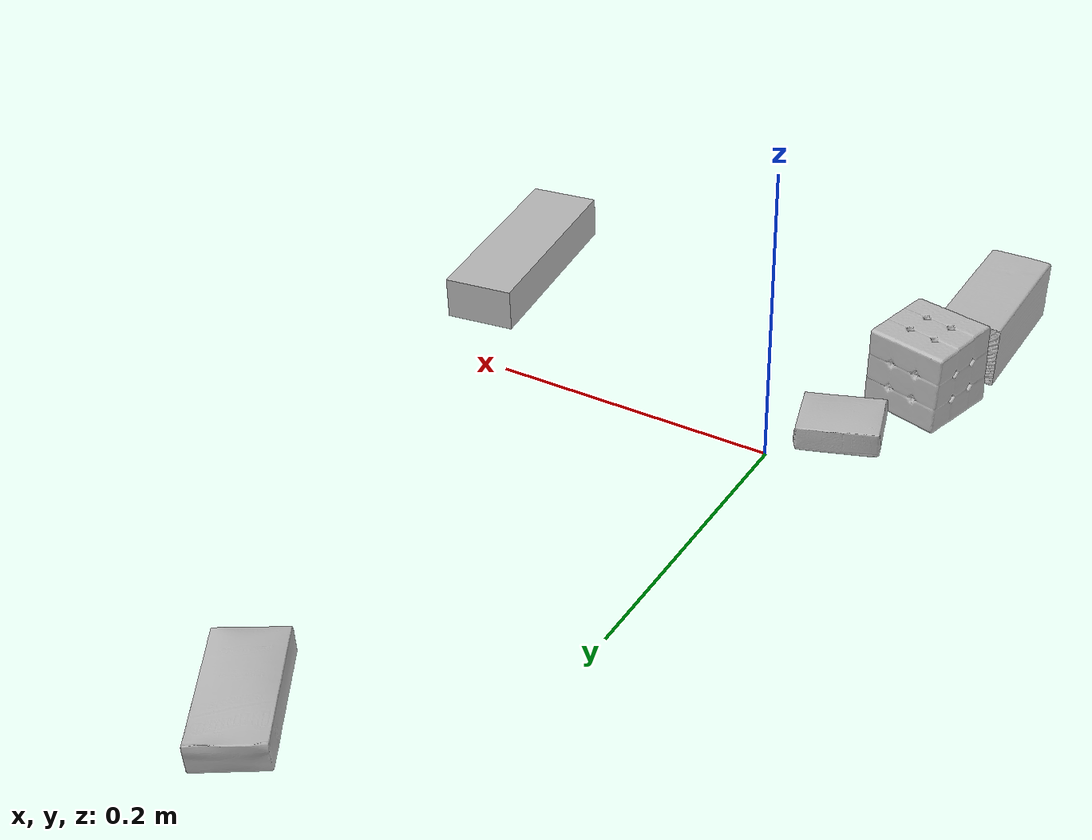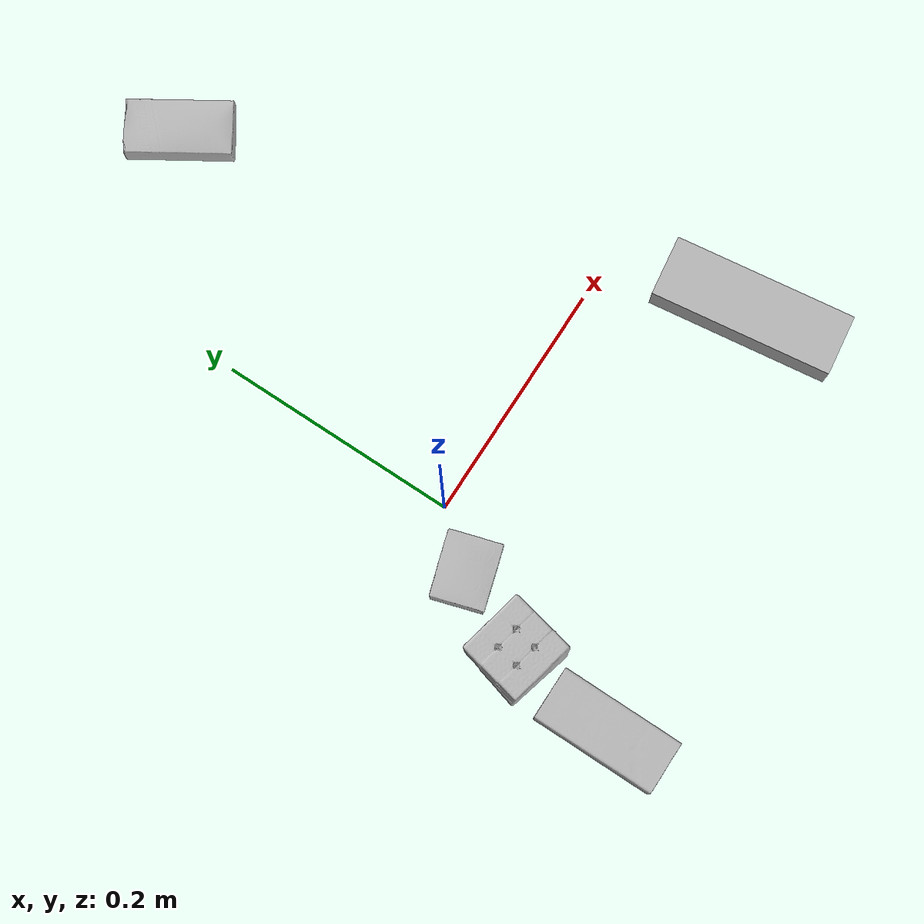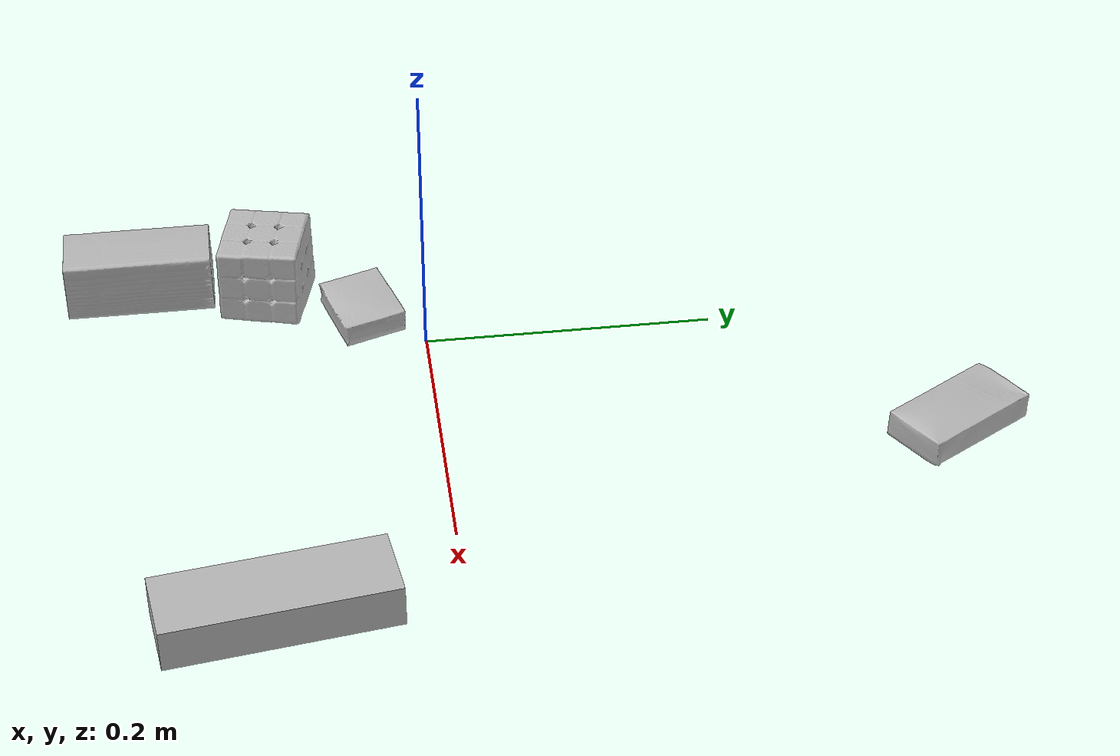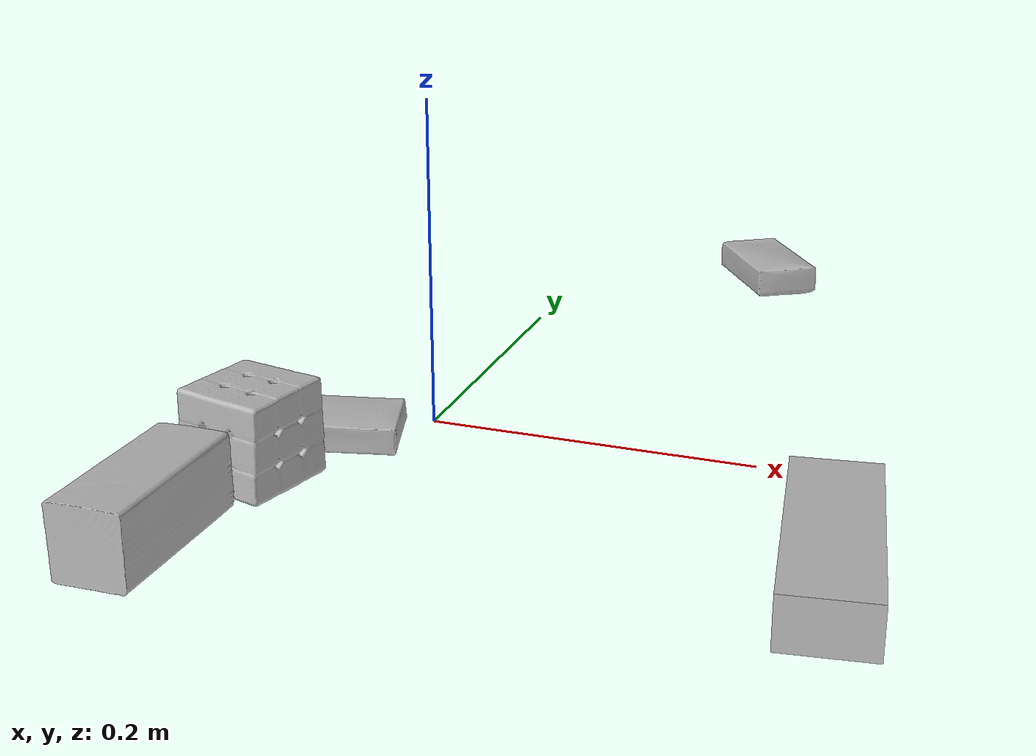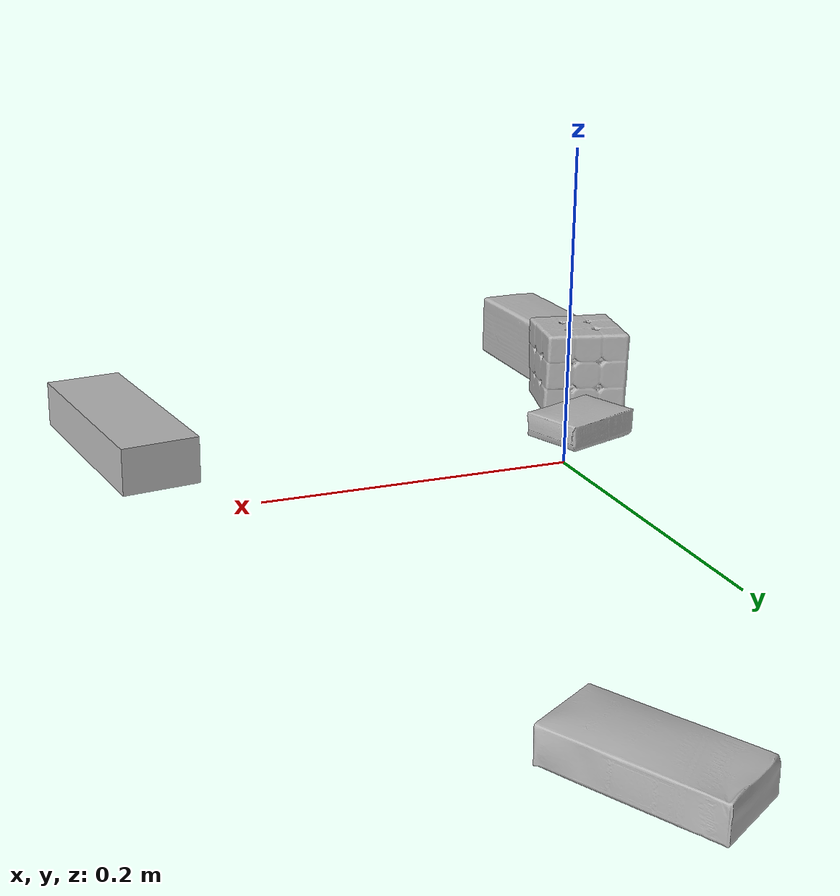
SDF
<sdf version="1.4">
  <world name="default">
    <light name="light1" type="point">
      <pose>0 0 1 0 0 0</pose>
      <diffuse>3 3 3 1</diffuse>
      <specular>3 3 3 1</specular>
    </light>
    <light name="light2" type="point">
      <pose>0 0.5 2 0 0 0</pose>
      <diffuse>1 1 1 1</diffuse>
      <specular>1 1 1 1</specular>
    </light>
    <light name="light3" type="point">
      <pose>0 0.5 2 0 0 0</pose>
      <diffuse>3 3 3 1</diffuse>
      <specular>3 3 3 1</specular>
    </light>
    <scene>
      <ambient>0.7 0.7 0.7</ambient>
    </scene>
    <model name="box1">
      <link name="link_box1">
        <collision name="default">
          <geometry>
            <mesh>
              <uri>model://wood_block/collision_meshes/collision.obj</uri>
              <scale>0.5 0.5 0.5</scale>
            </mesh>
          </geometry>
          <surface>
            <friction>
              <ode>
                <mu>0.5</mu>
                <mu2>0.5</mu2>
              </ode>
            </friction>
          <contact>
        <ode>
            <max_vel>0</max_vel>
            <min_depth>0.0001</min_depth>
            <kp>1e8</kp>
        </ode>
    </contact></surface>
        </collision>
        <visual name="default">
          <geometry>
            <mesh>
              <uri>model://wood_block/visual_meshes/visual.dae</uri>
              <scale>0.5 0.5 0.5</scale>
            </mesh>
          </geometry>
        </visual>
        <inertial>
          <mass>0.21249504387378693</mass>
          <pose>-2.906657528001233e-06 -0.00028540470520965755 0.00013204290007706732 -0.05220867383734612 -0.005192696375656893 -0.006861378651330705</pose>
          <inertia>
            <ixx>7.108762e-05</ixx>
            <iyy>0.00022456584</iyy>
            <izz>0.00022372584</izz>
            <ixy>0</ixy>
            <ixz>0</ixz>
            <iyz>0</iyz>
          </inertia>
        </inertial>
      </link>
      <pose>-0.07788141071796417 -0.19664283096790314 0.022629264742136 -0.0052086391378956464 0.005718769797695144 1.5739086884307123</pose>
    </model>
    <model name="box2">
      <link name="link_box2">
        <collision name="default">
          <geometry>
            <mesh>
              <uri>model://sugar_box/collision_meshes/collision.obj</uri>
              <scale>0.5 0.5 0.5</scale>
            </mesh>
          </geometry>
          <surface>
            <friction>
              <ode>
                <mu>0.5</mu>
                <mu2>0.5</mu2>
              </ode>
            </friction>
          <contact>
        <ode>
            <max_vel>0</max_vel>
            <min_depth>0.0001</min_depth>
            <kp>1e8</kp>
        </ode>
    </contact></surface>
        </collision>
        <visual name="default">
          <geometry>
            <mesh>
              <uri>model://sugar_box/visual_meshes/visual.dae</uri>
              <scale>0.5 0.5 0.5</scale>
            </mesh>
          </geometry>
        </visual>
        <inertial>
          <mass>0.11089310050010681</mass>
          <pose>0.0005171863595023751 1.924554817378521e-05 -0.00018182402709499002 -0.0004046262999979174 0.001050663638672674 0.002615379254561693</pose>
          <inertia>
            <ixx>2.3098954e-05</ixx>
            <iyy>7.4660566e-05</iyy>
            <izz>8.9377616e-05</izz>
            <ixy>0</ixy>
            <ixz>0</ixz>
            <iyz>0</iyz>
          </inertia>
        </inertial>
      </link>
      <pose>0.13765768706798553 0.34362807869911194 0.011399304494261742 0.0007756455021648469 -0.0234327462816818 -1.0237713638285413</pose>
    </model>
    <model name="box3">
      <link name="link_box3">
        <collision name="default">
          <geometry>
            <mesh>
              <uri>model://jenga/collision_meshes/collision.obj</uri>
              <scale>1.0 1.0 1.0</scale>
            </mesh>
          </geometry>
          <surface>
            <friction>
              <ode>
                <mu>0.5</mu>
                <mu2>0.5</mu2>
              </ode>
            </friction>
          <contact>
        <ode>
            <max_vel>0</max_vel>
            <min_depth>0.0001</min_depth>
            <kp>1e8</kp>
        </ode>
    </contact></surface>
        </collision>
        <visual name="default">
          <geometry>
            <mesh>
              <uri>model://jenga/visual_meshes/visual.dae</uri>
              <scale>1.0 1.0 1.0</scale>
            </mesh>
          </geometry>
        </visual>
        <inertial>
          <mass>0.163609579205513</mass>
          <pose>-2.502855807051674e-07 -0.0001025000965455547 -4.0923401684267446e-05 0.0 -7.34215461761844e-07 0.0</pose>
          <inertia>
            <ixx>4.527474e-05</ixx>
            <iyy>0.00030678045</iyy>
            <izz>0.0003275142</izz>
            <ixy>0</ixy>
            <ixz>0</ixz>
            <iyz>0</iyz>
          </inertia>
        </inertial>
      </link>
      <pose>0.26061952114105225 -0.11573708057403564 0.014999997802078724 1.8973695372708185e-08 -3.0372875706267157e-10 1.7066413728920533</pose>
    </model>
    <model name="box4">
      <link name="link_box4">
        <collision name="default">
          <geometry>
            <mesh>
              <uri>model://rubiks_cube/collision_meshes/collision.obj</uri>
              <scale>1.0 1.0 1.0</scale>
            </mesh>
          </geometry>
          <surface>
            <friction>
              <ode>
                <mu>0.5</mu>
                <mu2>0.5</mu2>
              </ode>
            </friction>
          <contact>
        <ode>
            <max_vel>0</max_vel>
            <min_depth>0.0001</min_depth>
            <kp>1e8</kp>
        </ode>
    </contact></surface>
        </collision>
        <visual name="default">
          <geometry>
            <mesh>
              <uri>model://rubiks_cube/visual_meshes/visual.dae</uri>
              <scale>1.0 1.0 1.0</scale>
            </mesh>
          </geometry>
        </visual>
        <inertial>
          <mass>0.25540637969970703</mass>
          <pose>2.6721041649580002e-05 5.2569666877388954e-05 -7.264316082000732e-06 -0.054671713185757496 -0.09814043055608018 -0.034455401135126476</pose>
          <inertia>
            <ixx>0.00014112917</ixx>
            <iyy>0.000140471</iyy>
            <izz>0.00014229867</izz>
            <ixy>0</ixy>
            <ixz>0</ixz>
            <iyz>0</iyz>
          </inertia>
        </inertial>
      </link>
      <pose>-0.06444034725427628 -0.10722406953573227 0.02867899462580681 -2.2497091880455133e-06 3.068411436631953e-07 1.343217493026635</pose>
    </model>
    <model name="box5">
      <link name="link_box5">
        <collision name="default">
          <geometry>
            <mesh>
              <uri>model://pudding_box/collision_meshes/collision.obj</uri>
              <scale>0.5 0.5 0.5</scale>
            </mesh>
          </geometry>
          <surface>
            <friction>
              <ode>
                <mu>0.5</mu>
                <mu2>0.5</mu2>
              </ode>
            </friction>
          <contact>
        <ode>
            <max_vel>0</max_vel>
            <min_depth>0.0001</min_depth>
            <kp>1e8</kp>
        </ode>
    </contact></surface>
        </collision>
        <visual name="default">
          <geometry>
            <mesh>
              <uri>model://pudding_box/visual_meshes/visual.dae</uri>
              <scale>0.5 0.5 0.5</scale>
            </mesh>
          </geometry>
        </visual>
        <inertial>
          <mass>0.04848850890994072</mass>
          <pose>0.00024474109522998333 0.000403394311433658 -0.0002594413817860186 0.0052131017882315455 -0.0066037973363940366 0.020079830752013892</pose>
          <inertia>
            <ixx>1.370344e-05</ixx>
            <iyy>9.219772e-06</iyy>
            <izz>2.023671e-05</izz>
            <ixy>0</ixy>
            <ixz>0</ixz>
            <iyz>0</iyz>
          </inertia>
        </inertial>
      </link>
      <pose>-0.03311792016029358 -0.041973233222961426 0.009862903505563736 0.022348673586162524 -0.01139160727917066 1.8642604512901926</pose>
    </model>
  <physics type="ode">
      <max_contacts>50</max_contacts>
      <ode>
        <solver>
          <type>quick</type>
          <iters>75</iters>
        </solver>
        <constraints>
          <contact_max_correcting_vel>0</contact_max_correcting_vel>
          <contact_surface_layer>0</contact_surface_layer>
        </constraints>
      </ode>
    </physics></world>
</sdf>
